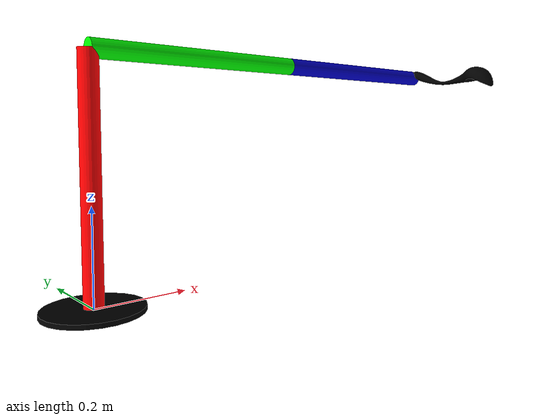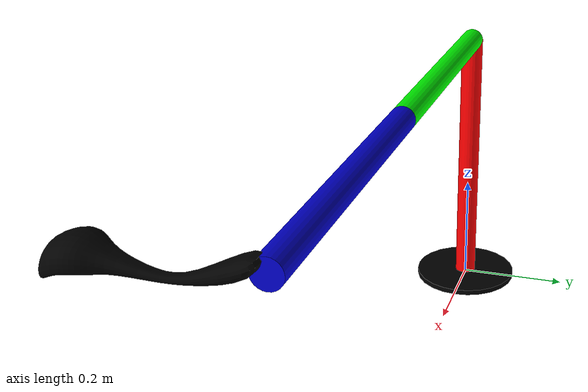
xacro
<?xml version="1.0"?>

<robot name="p2" xmlns:xacro="http://ros.org/wiki/xacro">
    <xacro:property name="pi" value="3.1415"/>

    <material name="red">
        <color rgba="1 0 0 1"/>
    </material>

    <material name="green">
        <color rgba="0 1 0 1"/>
    </material>

    <material name="blue">
        <color rgba="0 0 0.8 1"/>
    </material>

    <material name="black">
        <color rgba="0 0 0 1"/>
    </material>

    <xacro:macro name="default_inertial" params="mass">
    <inertial>
      <mass value="${mass}" />
      <inertia ixx="1.0" ixy="0.0" ixz="0.0" iyy="1.0" iyz="0.0" izz="1.0" />
    </inertial>
  </xacro:macro>

     <link name="dummy"></link>
    <!--I want to add a base link-->
    <link name="base_link">
        <visual>
            <origin xyz="0 0 0" rpy="0 0 0 "/>
            <geometry>
                <cylinder radius="0.10" length="0.01"/>
            </geometry>
            <material name="black"/>
        </visual>
        <collision>
            <geometry>
               <cylinder radius="0.10" length="0.01"/>
            </geometry>
        </collision>
        <xacro:default_inertial mass="50"/>
    </link>

    <link name="link1">
        <visual>
            <origin xyz="0 0 0.25" rpy="0 0 0 "/>
            <geometry>
                <cylinder radius="0.02" length="0.5"/>
            </geometry>
            <material name="red"/>
        </visual>
        <collision>
            <origin xyz="0 0 0.25" rpy="0 0 0 "/>
            <geometry>
                <cylinder radius="0.02" length="0.5"/>
            </geometry>
        </collision>
        <xacro:default_inertial mass="1"/>
    </link>

    <link name="link2">

        <visual>
            <origin xyz="0.25 0 0.0" rpy="${pi/2} 0 ${-pi/2}  "/>
            <geometry>
                <cylinder radius="0.02" length="0.5"/>
            </geometry>
            <material name="green"/>
        </visual>
        <collision>
            <origin xyz="0 0.25 0.0" rpy="${pi/2} 0 0.0"/>
            <geometry>
                <cylinder radius="0.02" length="0.5"/>
            </geometry>
        </collision>
        <xacro:default_inertial mass="1"/>
    </link>

    <link name="link3">
        <visual>
            <origin xyz="0.25 0 0" rpy="${pi/2} 0 ${pi/2}"/>
            <geometry>
                <cylinder radius="0.02" length="0.5"/>
            </geometry>
            <material name="blue"/>
        </visual>
        <collision>
            <origin xyz="0 0.25 0" rpy="${pi/2} 0 0"/>
            <geometry>
                <cylinder radius="0.02" length="0.5"/>
            </geometry>
        </collision>
        <xacro:default_inertial mass="1"/>
    </link>

    <link name="link4">
        <visual>
            <origin xyz="0 0 -0.125" rpy="${pi/2} ${pi} 0"/>
            <geometry>
                <mesh filename="package://robotics/projects/p2/p2_description/meshes/spoon.stl" scale="0.003 0.003 0.003"/>
            </geometry>
            <material name="black"/>
        </visual>
        <collision>
            <geometry>
                <mesh filename="package://robotics/projects/p2/p2_description/meshes/spoon.stl" scale="0.003 0.003 0.003"/>
            </geometry>
        </collision>
        <xacro:default_inertial mass="1"/>
    </link>

    <link name="link5">
        <visual>
            <origin xyz="0 0 0.125" rpy="0 0 0"/>
            <geometry>
                <cylinder radius="0.01" length="0.25"/>
            </geometry>
            <material name="red"/>
        </visual>
        <collision>
            <origin xyz="0 0 0.125" rpy="0 0 0"/>
            <geometry>
                <cylinder radius="0.01" length="0.25"/>
            </geometry>
        </collision>
        <xacro:default_inertial mass="1"/>
    </link>

    <!-- JOINT STUFF-->

    <joint name="joint5" type="fixed">
        <origin xyz="0 0 0" rpy="0 0 0"/>
        <parent link="dummy"/>
        <child link="link5"/>
    </joint>

    <joint name="dummy_joint" type="fixed">
        <origin xyz="0 0 0" rpy="0 0 0"/>
        <parent link="dummy"/>
        <child link="base_link"/>
    </joint>

    <joint name="joint1" type="prismatic">
        <origin xyz="0 0 0" rpy="0 0 0"/>
        <parent link="base_link"/>
        <child link="link1"/>
        <axis xyz="0 0 1"/>
        <limit lower="0" upper="0.25" effort="50" velocity="1"/>

    </joint>

    <joint name="joint2" type="revolute">
        <origin xyz="0 0.0 0.5" rpy="0 0 0"/>
        <parent link="link1"/>
        <child link="link2"/>
        <axis xyz="0 0 1"/>
        <limit lower="${-2*pi}" upper="${2*pi}" effort="50" velocity="1"/>

    </joint>

    <joint name="joint3" type="revolute">
        <origin xyz="0.5 0 0." rpy="${pi/2} 0 0"/>
        <parent link="link2"/>
        <child link="link3"/>
        <axis xyz="0 0 1"/>
        <limit lower="${-2*pi}" upper="${2*pi}" effort="50" velocity="1"/>
    </joint>

    <joint name="joint4" type="revolute">
        <origin xyz="0.50 0 0.25" rpy="0 0 0"/>
        <parent link="link3"/>
        <child link="link4"/>
        <axis xyz="0 0 1"/>
        <limit lower="${-2*pi}" upper="${2*pi}" effort="50" velocity="1"/>

    </joint>

    <!--TRANS STUFF-->

    <transmission name="trans1">
        <type>transmission_interface/SimpleTransmission</type>
        <actuator name="$joint1_motor">
            <mechanicalReduction>1</mechanicalReduction>
        </actuator>
        <joint name="joint1">
            <hardwareInterface>hardware_interface/PositionJointInterface</hardwareInterface>
        </joint>
    </transmission>

    <transmission name="trans2">
        <type>transmission_interface/SimpleTransmission</type>
        <actuator name="$joint2_motor">
            <mechanicalReduction>1</mechanicalReduction>
        </actuator>
        <joint name="joint2">
            <hardwareInterface>hardware_interface/PositionJointInterface</hardwareInterface>
        </joint>
    </transmission>

    <transmission name="trans3">
        <type>transmission_interface/SimpleTransmission</type>
        <actuator name="$joint3_motor">
            <mechanicalReduction>1</mechanicalReduction>
        </actuator>
        <joint name="joint3">
            <hardwareInterface>hardware_interface/PositionJointInterface</hardwareInterface>
        </joint>
    </transmission>

    <transmission name="trans4">
        <type>transmission_interface/SimpleTransmission</type>
        <actuator name="$joint4_motor">
            <mechanicalReduction>1</mechanicalReduction>
        </actuator>
        <joint name="joint4">
            <hardwareInterface>hardware_interface/PositionJointInterface</hardwareInterface>
        </joint>
    </transmission>

     <gazebo>
        <plugin name="gazebo_ros_control" filename="libgazebo_ros_control.so">
        <robotNamespace>/</robotNamespace>
        </plugin>
    </gazebo>

    <xacro:include filename="$(find robotics)/projects/p2/p2_description/urdf/p2.gazebo" />

</robot>
